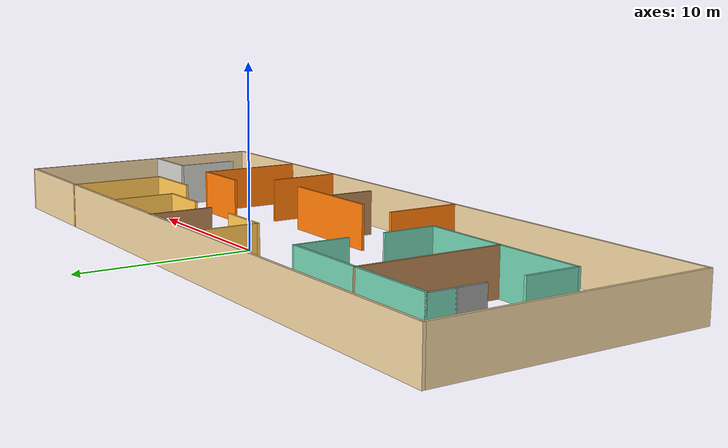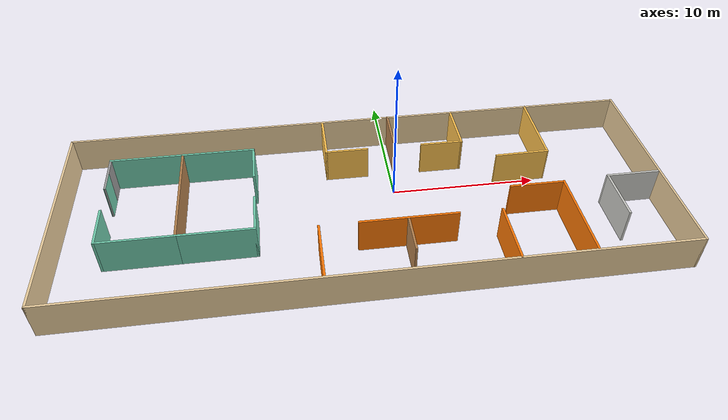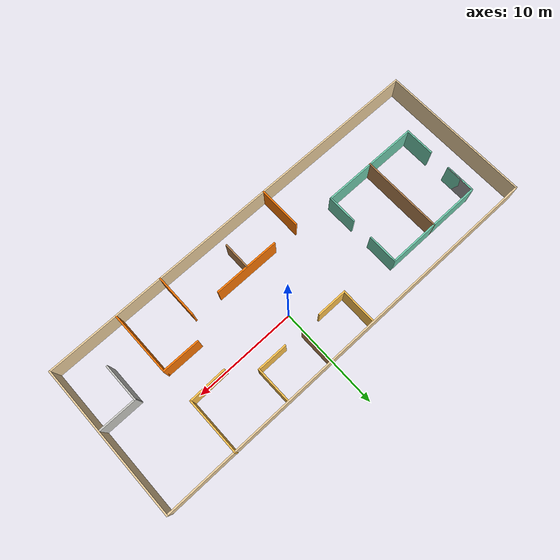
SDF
<?xml version='1.0'?>
<sdf version='1.6'>
  <model name='mybuilding'>
    <pose frame=''>-2.28912 -1.87759 0 0 -0 0</pose>
    <link name='Wall_0'>
      <collision name='Wall_0_Collision'>
        <geometry>
          <box>
            <size>15 0.15 2.5</size>
          </box>
        </geometry>
        <pose frame=''>0 0 1.25 0 -0 0</pose>
      </collision>
      <visual name='Wall_0_Visual'>
        <pose frame=''>0 0 1.25 0 -0 0</pose>
        <geometry>
          <box>
            <size>15 0.15 2.5</size>
          </box>
        </geometry>
        <material>
          <script>
            <uri>file://media/materials/scripts/gazebo.material</uri>
            <name>Gazebo/Grey</name>
          </script>
          <ambient>0.921569 0.807843 0.615686 1</ambient>
        </material>
        <meta>
          <layer>0</layer>
        </meta>
      </visual>
      <pose frame=''>-19.925 -0.011199 0 0 0 -1.5708</pose>
    </link>
    <link name='Wall_1'>
      <collision name='Wall_1_Collision'>
        <geometry>
          <box>
            <size>40 0.15 2.5</size>
          </box>
        </geometry>
        <pose frame=''>0 0 1.25 0 -0 0</pose>
      </collision>
      <visual name='Wall_1_Visual'>
        <pose frame=''>0 0 1.25 0 -0 0</pose>
        <geometry>
          <box>
            <size>40 0.15 2.5</size>
          </box>
        </geometry>
        <material>
          <script>
            <uri>file://media/materials/scripts/gazebo.material</uri>
            <name>Gazebo/Grey</name>
          </script>
          <ambient>0.921569 0.807843 0.615686 1</ambient>
        </material>
        <meta>
          <layer>0</layer>
        </meta>
      </visual>
      <pose frame=''>0 -7.4362 0 0 -0 0</pose>
    </link>
    <link name='Wall_10'>
      <collision name='Wall_10_Collision'>
        <geometry>
          <box>
            <size>3 0.15 2.5</size>
          </box>
        </geometry>
        <pose frame=''>0 0 1.25 0 -0 0</pose>
      </collision>
      <visual name='Wall_10_Visual'>
        <pose frame=''>0 0 1.25 0 -0 0</pose>
        <geometry>
          <box>
            <size>3 0.15 2.5</size>
          </box>
        </geometry>
        <material>
          <script>
            <uri>file://media/materials/scripts/gazebo.material</uri>
            <name>Gazebo/Grey</name>
          </script>
          <ambient>0.435294 0.796078 0.67451 1</ambient>
        </material>
        <meta>
          <layer>0</layer>
        </meta>
      </visual>
      <pose frame=''>-16.9272 -1.5196 0 0 -0 1.5708</pose>
    </link>
    <link name='Wall_13'>
      <collision name='Wall_13_Collision'>
        <geometry>
          <box>
            <size>5 0.15 2.5</size>
          </box>
        </geometry>
        <pose frame=''>0 0 1.25 0 -0 0</pose>
      </collision>
      <visual name='Wall_13_Visual'>
        <pose frame=''>0 0 1.25 0 -0 0</pose>
        <geometry>
          <box>
            <size>5 0.15 2.5</size>
          </box>
        </geometry>
        <material>
          <script>
            <uri>file://media/materials/scripts/gazebo.material</uri>
            <name>Gazebo/Grey</name>
          </script>
          <ambient>0.435294 0.796078 0.67451 1</ambient>
        </material>
        <meta>
          <layer>0</layer>
        </meta>
      </visual>
      <pose frame=''>-9.65216 4.9054 0 0 -0 0</pose>
    </link>
    <link name='Wall_14'>
      <collision name='Wall_14_Collision'>
        <geometry>
          <box>
            <size>3 0.15 2.5</size>
          </box>
        </geometry>
        <pose frame=''>0 0 1.25 0 -0 0</pose>
      </collision>
      <visual name='Wall_14_Visual'>
        <pose frame=''>0 0 1.25 0 -0 0</pose>
        <geometry>
          <box>
            <size>3 0.15 2.5</size>
          </box>
        </geometry>
        <material>
          <script>
            <uri>file://media/materials/scripts/gazebo.material</uri>
            <name>Gazebo/Grey</name>
          </script>
          <ambient>0.435294 0.796078 0.67451 1</ambient>
        </material>
        <meta>
          <layer>0</layer>
        </meta>
      </visual>
      <pose frame=''>-7.22716 3.4804 0 0 0 -1.5708</pose>
    </link>
    <link name='Wall_16'>
      <collision name='Wall_16_Collision'>
        <geometry>
          <box>
            <size>5 0.15 2.5</size>
          </box>
        </geometry>
        <pose frame=''>0 0 1.25 0 -0 0</pose>
      </collision>
      <visual name='Wall_16_Visual'>
        <pose frame=''>0 0 1.25 0 -0 0</pose>
        <geometry>
          <box>
            <size>5 0.15 2.5</size>
          </box>
        </geometry>
        <material>
          <script>
            <uri>file://media/materials/scripts/gazebo.material</uri>
            <name>Gazebo/Grey</name>
          </script>
          <ambient>0.435294 0.796078 0.67451 1</ambient>
        </material>
        <meta>
          <layer>0</layer>
        </meta>
      </visual>
      <pose frame=''>-9.65216 -2.9446 0 0 -0 0</pose>
    </link>
    <link name='Wall_17'>
      <collision name='Wall_17_Collision'>
        <geometry>
          <box>
            <size>3 0.15 2.5</size>
          </box>
        </geometry>
        <pose frame=''>0 0 1.25 0 -0 0</pose>
      </collision>
      <visual name='Wall_17_Visual'>
        <pose frame=''>0 0 1.25 0 -0 0</pose>
        <geometry>
          <box>
            <size>3 0.15 2.5</size>
          </box>
        </geometry>
        <material>
          <script>
            <uri>file://media/materials/scripts/gazebo.material</uri>
            <name>Gazebo/Grey</name>
          </script>
          <ambient>0.435294 0.796078 0.67451 1</ambient>
        </material>
        <meta>
          <layer>0</layer>
        </meta>
      </visual>
      <pose frame=''>-7.22716 -1.5196 0 0 -0 1.5708</pose>
    </link>
    <link name='Wall_2'>
      <collision name='Wall_2_Collision'>
        <geometry>
          <box>
            <size>15 0.15 2.5</size>
          </box>
        </geometry>
        <pose frame=''>0 0 1.25 0 -0 0</pose>
      </collision>
      <visual name='Wall_2_Visual'>
        <pose frame=''>0 0 1.25 0 -0 0</pose>
        <geometry>
          <box>
            <size>15 0.15 2.5</size>
          </box>
        </geometry>
        <material>
          <script>
            <uri>file://media/materials/scripts/gazebo.material</uri>
            <name>Gazebo/Grey</name>
          </script>
          <ambient>0.921569 0.807843 0.615686 1</ambient>
        </material>
        <meta>
          <layer>0</layer>
        </meta>
      </visual>
      <pose frame=''>19.925 -0.011199 0 0 -0 1.5708</pose>
    </link>
    <link name='Wall_21'>
      <collision name='Wall_21_Collision'>
        <geometry>
          <box>
            <size>3.5 0.15 2.5</size>
          </box>
        </geometry>
        <pose frame=''>0 0 1.25 0 -0 0</pose>
      </collision>
      <visual name='Wall_21_Visual'>
        <pose frame=''>0 0 1.25 0 -0 0</pose>
        <geometry>
          <box>
            <size>3.5 0.15 2.5</size>
          </box>
        </geometry>
        <material>
          <script>
            <uri>file://media/materials/scripts/gazebo.material</uri>
            <name>Gazebo/Grey</name>
          </script>
          <ambient>1 0.764706 0.305882 1</ambient>
        </material>
        <meta>
          <layer>0</layer>
        </meta>
      </visual>
      <pose frame=''>-2.18267 5.60152 0 0 -0 1.5708</pose>
    </link>
    <link name='Wall_23'>
      <collision name='Wall_23_Collision'>
        <geometry>
          <box>
            <size>3 0.15 2.5</size>
          </box>
        </geometry>
        <pose frame=''>0 0 1.25 0 -0 0</pose>
      </collision>
      <visual name='Wall_23_Visual'>
        <pose frame=''>0 0 1.25 0 -0 0</pose>
        <geometry>
          <box>
            <size>3 0.15 2.5</size>
          </box>
        </geometry>
        <material>
          <script>
            <uri>file://media/materials/scripts/gazebo.material</uri>
            <name>Gazebo/Grey</name>
          </script>
          <ambient>1 0.764706 0.305882 1</ambient>
        </material>
        <meta>
          <layer>0</layer>
        </meta>
      </visual>
      <pose frame=''>-0.757668 3.92652 0 0 -0 0</pose>
    </link>
    <link name='Wall_27'>
      <collision name='Wall_27_Collision'>
        <geometry>
          <box>
            <size>3.5 0.15 2.5</size>
          </box>
        </geometry>
        <pose frame=''>0 0 1.25 0 -0 0</pose>
      </collision>
      <visual name='Wall_27_Visual'>
        <pose frame=''>0 0 1.25 0 -0 0</pose>
        <geometry>
          <box>
            <size>3.5 0.15 2.5</size>
          </box>
        </geometry>
        <material>
          <script>
            <uri>file://media/materials/scripts/gazebo.material</uri>
            <name>Gazebo/Wood</name>
          </script>
          <ambient>1 1 1 1</ambient>
        </material>
        <meta>
          <layer>0</layer>
        </meta>
      </visual>
      <pose frame=''>2.64477 5.70807 0 0 -0 1.5708</pose>
    </link>
    <link name='Wall_3'>
      <collision name='Wall_3_Collision'>
        <geometry>
          <box>
            <size>40 0.15 2.5</size>
          </box>
        </geometry>
        <pose frame=''>0 0 1.25 0 -0 0</pose>
      </collision>
      <visual name='Wall_3_Visual'>
        <pose frame=''>0 0 1.25 0 -0 0</pose>
        <geometry>
          <box>
            <size>40 0.15 2.5</size>
          </box>
        </geometry>
        <material>
          <script>
            <uri>file://media/materials/scripts/gazebo.material</uri>
            <name>Gazebo/Grey</name>
          </script>
          <ambient>0.921569 0.807843 0.615686 1</ambient>
        </material>
        <meta>
          <layer>0</layer>
        </meta>
      </visual>
      <pose frame=''>0 7.4138 0 0 -0 3.14159</pose>
    </link>
    <link name='Wall_30'>
      <collision name='Wall_30_Collision'>
        <geometry>
          <box>
            <size>3 0.15 2.5</size>
          </box>
        </geometry>
        <pose frame=''>0 0 1.25 0 -0 0</pose>
      </collision>
      <visual name='Wall_30_Visual'>
        <pose frame=''>0 0 1.25 0 -0 0</pose>
        <geometry>
          <box>
            <size>3 0.15 2.5</size>
          </box>
        </geometry>
        <material>
          <script>
            <uri>file://media/materials/scripts/gazebo.material</uri>
            <name>Gazebo/Grey</name>
          </script>
          <ambient>1 0.764706 0.305882 1</ambient>
        </material>
        <meta>
          <layer>0</layer>
        </meta>
      </visual>
      <pose frame=''>5.98499 3.91607 0 0 -0 0</pose>
    </link>
    <link name='Wall_31'>
      <collision name='Wall_31_Collision'>
        <geometry>
          <box>
            <size>3.5799 0.15 2.5</size>
          </box>
        </geometry>
        <pose frame=''>0 0 1.25 0 -0 0</pose>
      </collision>
      <visual name='Wall_31_Visual'>
        <pose frame=''>0 0 1.25 0 -0 0</pose>
        <geometry>
          <box>
            <size>3.5799 0.15 2.5</size>
          </box>
        </geometry>
        <material>
          <script>
            <uri>file://media/materials/scripts/gazebo.material</uri>
            <name>Gazebo/Grey</name>
          </script>
          <ambient>1 0.764706 0.305882 1</ambient>
        </material>
        <meta>
          <layer>0</layer>
        </meta>
      </visual>
      <pose frame=''>7.39669 5.63097 0 0 -0 1.57855</pose>
    </link>
    <link name='Wall_33'>
      <collision name='Wall_33_Collision'>
        <geometry>
          <box>
            <size>4.25 0.15 2.5</size>
          </box>
        </geometry>
        <pose frame=''>0 0 1.25 0 -0 0</pose>
      </collision>
      <visual name='Wall_33_Visual'>
        <pose frame=''>0 0 1.25 0 -0 0</pose>
        <geometry>
          <box>
            <size>4.25 0.15 2.5</size>
          </box>
        </geometry>
        <material>
          <script>
            <uri>file://media/materials/scripts/gazebo.material</uri>
            <name>Gazebo/Grey</name>
          </script>
          <ambient>0.996078 0.47451 0.0196078 1</ambient>
        </material>
        <meta>
          <layer>0</layer>
        </meta>
      </visual>
      <pose frame=''>-3.32789 -5.33009 0 0 0 -1.5708</pose>
    </link>
    <link name='Wall_35'>
      <collision name='Wall_35_Collision'>
        <geometry>
          <box>
            <size>6.5 0.15 2.5</size>
          </box>
        </geometry>
        <pose frame=''>0 0 1.25 0 -0 0</pose>
      </collision>
      <visual name='Wall_35_Visual'>
        <pose frame=''>0 0 1.25 0 -0 0</pose>
        <geometry>
          <box>
            <size>6.5 0.15 2.5</size>
          </box>
        </geometry>
        <material>
          <script>
            <uri>file://media/materials/scripts/gazebo.material</uri>
            <name>Gazebo/Grey</name>
          </script>
          <ambient>0.996078 0.47451 0.0196078 1</ambient>
        </material>
        <meta>
          <layer>0</layer>
        </meta>
      </visual>
      <pose frame=''>2.39581 -3.23963 0 0 -0 0</pose>
    </link>
    <link name='Wall_37'>
      <collision name='Wall_37_Collision'>
        <geometry>
          <box>
            <size>4.25 0.15 2.5</size>
          </box>
        </geometry>
        <pose frame=''>0 0 1.25 0 -0 0</pose>
      </collision>
      <visual name='Wall_37_Visual'>
        <pose frame=''>0 0 1.25 0 -0 0</pose>
        <geometry>
          <box>
            <size>4.25 0.15 2.5</size>
          </box>
        </geometry>
        <material>
          <script>
            <uri>file://media/materials/scripts/gazebo.material</uri>
            <name>Gazebo/Grey</name>
          </script>
          <ambient>0.996078 0.47451 0.0196078 1</ambient>
        </material>
        <meta>
          <layer>0</layer>
        </meta>
      </visual>
      <pose frame=''>8.40423 -5.33736 0 0 0 -1.5708</pose>
    </link>
    <link name='Wall_39'>
      <collision name='Wall_39_Collision'>
        <geometry>
          <box>
            <size>2.75 0.15 2.5</size>
          </box>
        </geometry>
        <pose frame=''>0 0 1.25 0 -0 0</pose>
      </collision>
      <visual name='Wall_39_Visual'>
        <pose frame=''>0 0 1.25 0 -0 0</pose>
        <geometry>
          <box>
            <size>2.75 0.15 2.5</size>
          </box>
        </geometry>
        <material>
          <script>
            <uri>file://media/materials/scripts/gazebo.material</uri>
            <name>Gazebo/Wood</name>
          </script>
          <ambient>1 1 1 1</ambient>
        </material>
        <meta>
          <layer>0</layer>
        </meta>
      </visual>
      <pose frame=''>2.33589 -4.58009 0 0 0 -1.5708</pose>
    </link>
    <link name='Wall_41'>
      <collision name='Wall_41_Collision'>
        <geometry>
          <box>
            <size>3.75062 0.15 2.5</size>
          </box>
        </geometry>
        <pose frame=''>0 0 1.25 0 -0 0</pose>
      </collision>
      <visual name='Wall_41_Visual'>
        <pose frame=''>0 0 1.25 0 -0 0</pose>
        <geometry>
          <box>
            <size>3.75062 0.15 2.5</size>
          </box>
        </geometry>
        <material>
          <script>
            <uri>file://media/materials/scripts/gazebo.material</uri>
            <name>Gazebo/Grey</name>
          </script>
          <ambient>1 0.764706 0.305882 1</ambient>
        </material>
        <meta>
          <layer>0</layer>
        </meta>
      </visual>
      <pose frame=''>11.2965 2.05289 0 0 -0 0.0185</pose>
    </link>
    <link name='Wall_42'>
      <collision name='Wall_42_Collision'>
        <geometry>
          <box>
            <size>5.5 0.15 2.5</size>
          </box>
        </geometry>
        <pose frame=''>0 0 1.25 0 -0 0</pose>
      </collision>
      <visual name='Wall_42_Visual'>
        <pose frame=''>0 0 1.25 0 -0 0</pose>
        <geometry>
          <box>
            <size>5.5 0.15 2.5</size>
          </box>
        </geometry>
        <material>
          <script>
            <uri>file://media/materials/scripts/gazebo.material</uri>
            <name>Gazebo/Grey</name>
          </script>
          <ambient>1 0.764706 0.305882 1</ambient>
        </material>
        <meta>
          <layer>0</layer>
        </meta>
      </visual>
      <pose frame=''>13.0965 4.7612 0 0 -0 1.5708</pose>
    </link>
    <link name='Wall_44'>
      <collision name='Wall_44_Collision'>
        <geometry>
          <box>
            <size>3.75 0.15 2.5</size>
          </box>
        </geometry>
        <pose frame=''>0 0 1.25 0 -0 0</pose>
      </collision>
      <visual name='Wall_44_Visual'>
        <pose frame=''>0 0 1.25 0 -0 0</pose>
        <geometry>
          <box>
            <size>3.75 0.15 2.5</size>
          </box>
        </geometry>
        <material>
          <script>
            <uri>file://media/materials/scripts/gazebo.material</uri>
            <name>Gazebo/Grey</name>
          </script>
          <ambient>0.996078 0.47451 0.0196078 1</ambient>
        </material>
        <meta>
          <layer>0</layer>
        </meta>
      </visual>
      <pose frame=''>11.3579 -1.21421 0 0 -0 0</pose>
    </link>
    <link name='Wall_45'>
      <collision name='Wall_45_Collision'>
        <geometry>
          <box>
            <size>6.25 0.15 2.5</size>
          </box>
        </geometry>
        <pose frame=''>0 0 1.25 0 -0 0</pose>
      </collision>
      <visual name='Wall_45_Visual'>
        <pose frame=''>0 0 1.25 0 -0 0</pose>
        <geometry>
          <box>
            <size>6.25 0.15 2.5</size>
          </box>
        </geometry>
        <material>
          <script>
            <uri>file://media/materials/scripts/gazebo.material</uri>
            <name>Gazebo/Grey</name>
          </script>
          <ambient>0.996078 0.47451 0.0196078 1</ambient>
        </material>
        <meta>
          <layer>0</layer>
        </meta>
      </visual>
      <pose frame=''>13.1579 -4.26421 0 0 0 -1.5708</pose>
    </link>
    <link name='Wall_47'>
      <collision name='Wall_47_Collision'>
        <geometry>
          <box>
            <size>3.75 0.15 2.5</size>
          </box>
        </geometry>
        <pose frame=''>0 0 1.25 0 -0 0</pose>
      </collision>
      <visual name='Wall_47_Visual'>
        <pose frame=''>0 0 1.25 0 -0 0</pose>
        <geometry>
          <box>
            <size>3.75 0.15 2.5</size>
          </box>
        </geometry>
        <material>
          <script>
            <uri>file://media/materials/scripts/gazebo.material</uri>
            <name>Gazebo/CeilingTiled</name>
          </script>
          <ambient>1 1 1 1</ambient>
        </material>
        <meta>
          <layer>0</layer>
        </meta>
      </visual>
      <pose frame=''>18.0741 -1.01193 0 0 -0 3.14159</pose>
    </link>
    <link name='Wall_48'>
      <collision name='Wall_48_Collision'>
        <geometry>
          <box>
            <size>3.75 0.15 2.5</size>
          </box>
        </geometry>
        <pose frame=''>0 0 1.25 0 -0 0</pose>
      </collision>
      <visual name='Wall_48_Visual'>
        <pose frame=''>0 0 1.25 0 -0 0</pose>
        <geometry>
          <box>
            <size>3.75 0.15 2.5</size>
          </box>
        </geometry>
        <material>
          <script>
            <uri>file://media/materials/scripts/gazebo.material</uri>
            <name>Gazebo/CeilingTiled</name>
          </script>
          <ambient>1 1 1 1</ambient>
        </material>
        <meta>
          <layer>0</layer>
        </meta>
      </visual>
      <pose frame=''>16.2741 -2.81193 0 0 0 -1.5708</pose>
    </link>
    <link name='Wall_5'>
      <collision name='Wall_5_Collision'>
        <geometry>
          <box>
            <size>3 0.15 2.5</size>
          </box>
        </geometry>
        <pose frame=''>0 0 1.25 0 -0 0</pose>
      </collision>
      <visual name='Wall_5_Visual'>
        <pose frame=''>0 0 1.25 0 -0 0</pose>
        <geometry>
          <box>
            <size>3 0.15 2.5</size>
          </box>
        </geometry>
        <material>
          <script>
            <uri>file://media/materials/scripts/gazebo.material</uri>
            <name>Gazebo/Grey</name>
          </script>
          <ambient>1 1 1 1</ambient>
        </material>
        <meta>
          <layer>0</layer>
        </meta>
      </visual>
      <pose frame=''>-16.9272 3.4804 0 0 0 -1.5708</pose>
    </link>
    <link name='Wall_6'>
      <collision name='Wall_6_Collision'>
        <geometry>
          <box>
            <size>3 0.15 2.5</size>
          </box>
        </geometry>
        <pose frame=''>0 0 1.25 0 -0 0</pose>
      </collision>
      <visual name='Wall_6_Visual'>
        <pose frame=''>0 0 1.25 0 -0 0</pose>
        <geometry>
          <box>
            <size>3 0.15 2.5</size>
          </box>
        </geometry>
        <material>
          <script>
            <uri>file://media/materials/scripts/gazebo.material</uri>
            <name>Gazebo/Grey</name>
          </script>
          <ambient>0.435294 0.796078 0.67451 1</ambient>
        </material>
        <meta>
          <layer>0</layer>
        </meta>
      </visual>
      <pose frame=''>-16.9272 3.4804 0 0 -0 1.5708</pose>
    </link>
    <link name='Wall_7'>
      <collision name='Wall_7_Collision'>
        <geometry>
          <box>
            <size>5 0.15 2.5</size>
          </box>
        </geometry>
        <pose frame=''>0 0 1.25 0 -0 0</pose>
      </collision>
      <visual name='Wall_7_Visual'>
        <pose frame=''>0 0 1.25 0 -0 0</pose>
        <geometry>
          <box>
            <size>5 0.15 2.5</size>
          </box>
        </geometry>
        <material>
          <script>
            <uri>file://media/materials/scripts/gazebo.material</uri>
            <name>Gazebo/Grey</name>
          </script>
          <ambient>0.435294 0.796078 0.67451 1</ambient>
        </material>
        <meta>
          <layer>0</layer>
        </meta>
      </visual>
      <pose frame=''>-14.5022 4.9054 0 0 -0 0</pose>
    </link>
    <link name='Wall_8'>
      <collision name='Wall_8_Collision'>
        <geometry>
          <box>
            <size>8 0.15 2.5</size>
          </box>
        </geometry>
        <pose frame=''>0 0 1.25 0 -0 0</pose>
      </collision>
      <visual name='Wall_8_Visual'>
        <pose frame=''>0 0 1.25 0 -0 0</pose>
        <geometry>
          <box>
            <size>8 0.15 2.5</size>
          </box>
        </geometry>
        <material>
          <script>
            <uri>file://media/materials/scripts/gazebo.material</uri>
            <name>Gazebo/Wood</name>
          </script>
          <ambient>1 1 1 1</ambient>
        </material>
        <meta>
          <layer>0</layer>
        </meta>
      </visual>
      <pose frame=''>-12.0772 0.980403 0 0 0 -1.5708</pose>
    </link>
    <link name='Wall_9'>
      <collision name='Wall_9_Collision'>
        <geometry>
          <box>
            <size>5 0.15 2.5</size>
          </box>
        </geometry>
        <pose frame=''>0 0 1.25 0 -0 0</pose>
      </collision>
      <visual name='Wall_9_Visual'>
        <pose frame=''>0 0 1.25 0 -0 0</pose>
        <geometry>
          <box>
            <size>5 0.15 2.5</size>
          </box>
        </geometry>
        <material>
          <script>
            <uri>file://media/materials/scripts/gazebo.material</uri>
            <name>Gazebo/Grey</name>
          </script>
          <ambient>0.435294 0.796078 0.67451 1</ambient>
        </material>
        <meta>
          <layer>0</layer>
        </meta>
      </visual>
      <pose frame=''>-14.5022 -2.9446 0 0 -0 3.14159</pose>
    </link>
    <static>1</static>
  </model>
</sdf>
